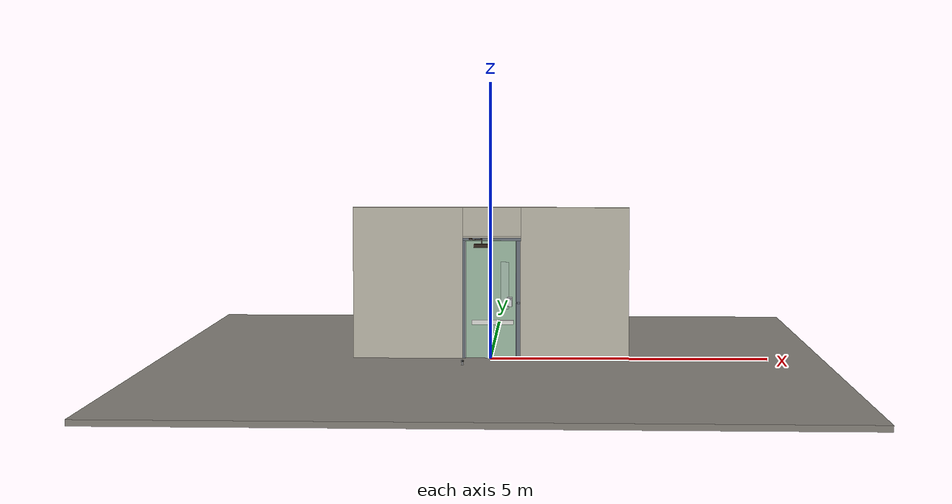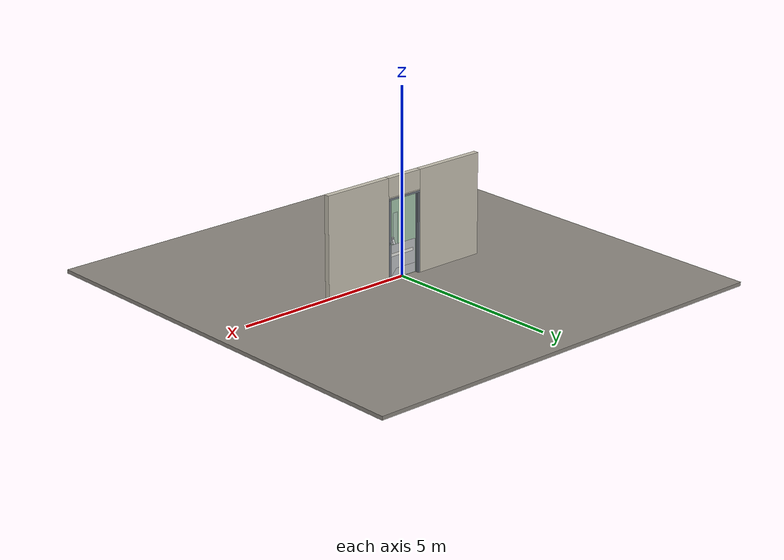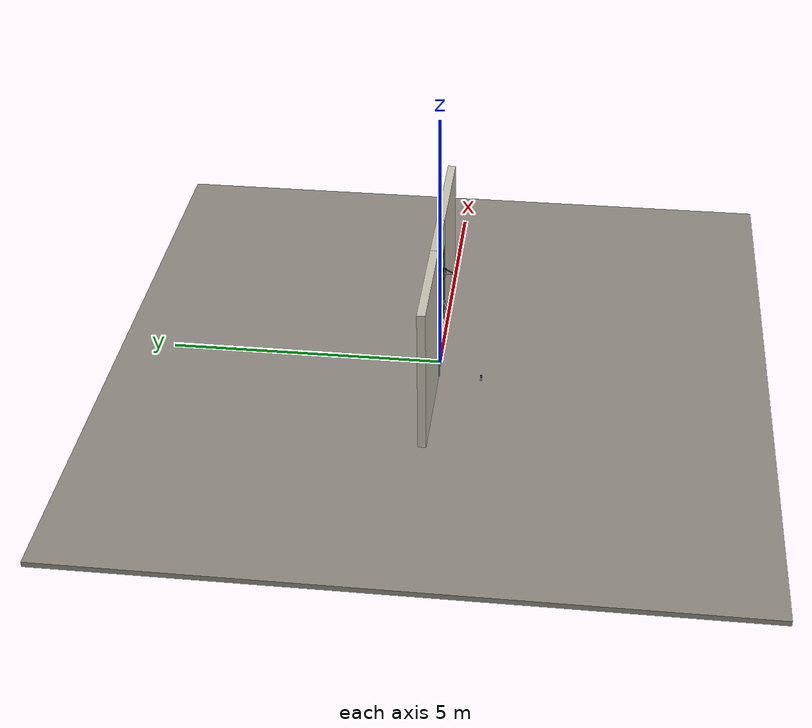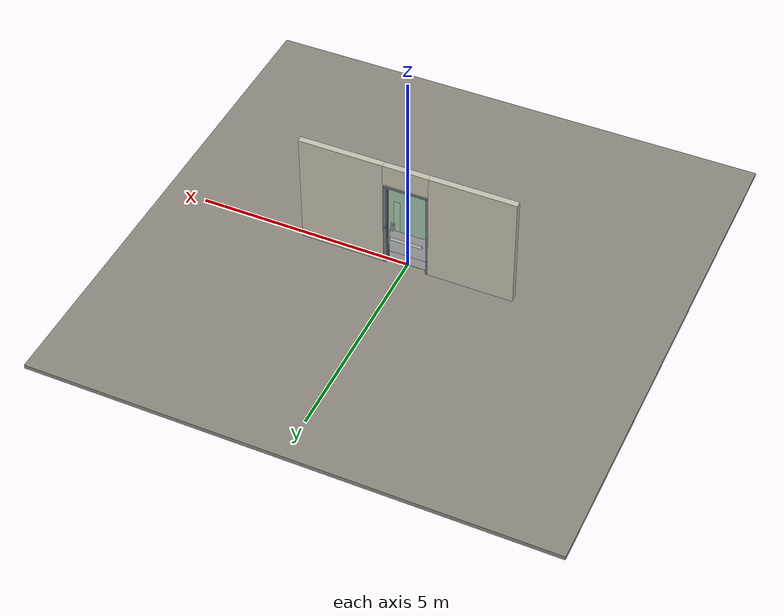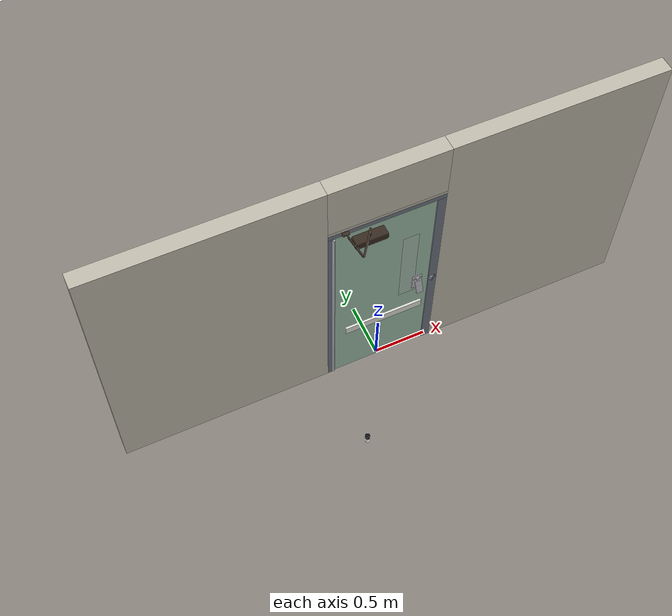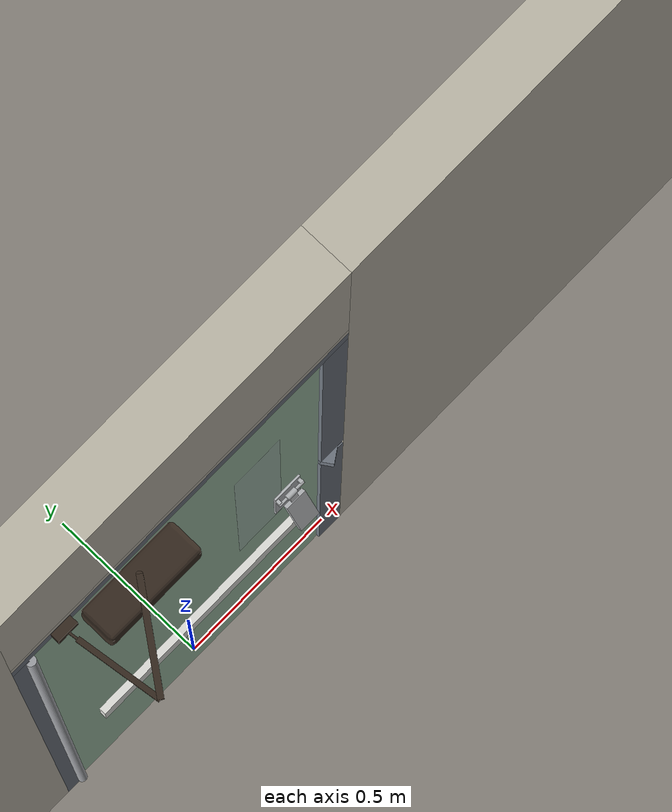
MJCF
<?xml version="1.0" ?>
<mujoco model="db0884_swing_single_full">
  <compiler angle="radian" meshdir="../../hardware" texturedir="../../textures" autolimits="true" inertiafromgeom="false"/>
  <option timestep="0.002" integrator="implicitfast" cone="elliptic" impratio="10" noslip_iterations="3">
    <flag multiccd="enable"/>
  </option>
  <size memory="16M"/>
  <default>
    <geom condim="4" solref="0.005 1" solimp="0.95 0.99 0.001"/>
    <joint solreflimit="0.005 1" solimplimit="0.95 0.99 0.001"/>
    <tendon solreflimit="0.005 1"/>
    <equality solref="0.002 1"/>
  </default>
  <visual>
    <headlight ambient="0.4 0.4 0.4" diffuse="0.7 0.7 0.7" specular="0.2 0.2 0.2"/>
    <quality shadowsize="4096"/>
    <map znear="0.01" zfar="60"/>
  </visual>
  <asset>
    <mesh name="closer_body_fdc4667657" file="closer_body_fdc4667657.obj"/>
    <material name="mat_floor" rgba="0.55 0.53 0.5 1" specular="0.2" shininess="0.15" reflectance="0"/>
    <material name="mat_wall" rgba="0.78 0.76 0.7 1" specular="0.2" shininess="0.1" reflectance="0"/>
    <material name="mat_leaf" rgba="0.65 0.78 0.68 1" specular="0.2" shininess="0.34" reflectance="0"/>
    <material name="mat_glass" rgba="0.8 0.85 0.85 0.35" specular="0.2" shininess="0.9" reflectance="0.1"/>
    <material name="mat_hinge" rgba="0.65 0.66 0.68 1" specular="0.74" shininess="0.5" reflectance="0.36"/>
    <material name="mat_op_stainless" rgba="0.75 0.76 0.77 1" specular="0.8" shininess="0.65" reflectance="0.4"/>
    <material name="mat_bolt" rgba="0.75 0.76 0.77 1" specular="0.8" shininess="0.65" reflectance="0.4"/>
    <material name="mat_frame" rgba="0.45 0.48 0.52 1" specular="0.32" shininess="0.6" reflectance="0.08"/>
    <material name="mat_closer" rgba="0.22 0.17 0.13 1" specular="0.8" shininess="0.6" reflectance="0.4"/>
    <material name="mat_kick" rgba="0.75 0.76 0.77 1" specular="0.8" shininess="0.65" reflectance="0.4"/>
    <material name="mat_bumper" rgba="0.92 0.92 0.9 1" specular="0.2" shininess="0.6" reflectance="0"/>
    <material name="mat_bumper_stop" rgba="0.08 0.08 0.08 1" specular="0.2" shininess="0.1" reflectance="0"/>
    <material name="mat_stop_base" rgba="0.9 0.9 0.92 1" specular="0.8" shininess="0.9" reflectance="0.4"/>
    <texture name="skybox" type="skybox" builtin="gradient" rgb1="0.6 0.7 0.85" rgb2="0.9 0.92 0.95" width="256" height="256"/>
  </asset>
  <worldbody>
    <light name="sun" pos="1.5 -2.5 4" dir="-0.3 0.5 -0.8" directional="true" diffuse="0.8 0.8 0.8" specular="0.3 0.3 0.3" castshadow="true"/>
    <light name="fill" pos="-1.5 2.5 3" dir="0.3 -0.5 -0.7" directional="true" diffuse="0.35 0.35 0.4" castshadow="false"/>
    <camera name="robot_view" pos="0 -2.594313 1.812087" xyaxes="1 0 0 0 0.26963 0.962964" fovy="52"/>
    <camera name="far_view" pos="0 2.681312 1.812087" xyaxes="-1 0 0 0 -0.26963 0.962964" fovy="52"/>
    <camera name="iso" pos="2.004737 -2.172262 2.234138" xyaxes="0.741536 0.670913 0 -0.242917 0.268487 0.932151" fovy="46"/>
    <camera name="detail_handle" pos="0.5245 -0.869521 1.293663" xyaxes="0.97561 0.219512 0 -0.070934 0.315262 0.94635" fovy="38"/>
    <geom name="floor" type="box" size="6 6 0.05" pos="0 0 -0.05" material="mat_floor" group="0" contype="1" conaffinity="1" friction="0.8 0.005 0.0001" density="2400"/>
    <geom name="wall_left" type="box" size="0.99475 0.0725 1.3735" pos="-1.50525 0.0435 1.3735" material="mat_wall" group="0" contype="1" conaffinity="1" friction="0.6 0.005 0.0001" density="800"/>
    <geom name="wall_right" type="box" size="0.97975 0.0725 1.3735" pos="1.52025 0.0435 1.3735" material="mat_wall" group="0" contype="1" conaffinity="1" friction="0.6 0.005 0.0001" density="800"/>
    <geom name="wall_header" type="box" size="0.5255 0.0725 0.26" pos="0.015 0.0435 2.487" material="mat_wall" group="0" contype="1" conaffinity="1" friction="0.6 0.005 0.0001" density="800"/>
    <geom name="jamb_hinge" type="box" size="0.025 0.0725 1.0735" pos="-0.4855 0.0435 1.0735" material="mat_frame" group="0" contype="1" conaffinity="1" friction="0.6 0.005 0.0001" density="300"/>
    <geom name="strike_1016_wall_n" type="box" size="0.04 0.05325 0.018" pos="0.5005 0.06275 1.016" material="mat_frame" group="0" contype="1" conaffinity="1" friction="0.6 0.005 0.0001" density="300"/>
    <geom name="strike_1016_wall_p" type="box" size="0.04 0.008 0.018" pos="0.5005 -0.0175 1.016" material="mat_frame" group="0" contype="1" conaffinity="1" friction="0.6 0.005 0.0001" density="300"/>
    <geom name="strike_1016_ramp" type="box" size="0.04 0.018028 0.018" pos="0.503782 -0.018312 1.016" quat="0.957092 0 0 0.289784" material="mat_frame" group="0" contype="1" conaffinity="1" friction="0.12 0.005 0.0001" density="300"/>
    <geom name="strike_1016_back" type="box" size="0.0285 0.0095 0.018" pos="0.512 0 1.016" material="mat_frame" group="0" contype="1" conaffinity="1" friction="0.6 0.005 0.0001" density="300"/>
    <geom name="jamb_strike_0" type="box" size="0.04 0.0725 0.499" pos="0.5005 0.0435 0.499" material="mat_frame" group="0" contype="1" conaffinity="1" friction="0.6 0.005 0.0001" density="300"/>
    <geom name="jamb_strike_1" type="box" size="0.04 0.0725 0.5565" pos="0.5005 0.0435 1.5905" material="mat_frame" group="0" contype="1" conaffinity="1" friction="0.6 0.005 0.0001" density="300"/>
    <geom name="jamb_head" type="box" size="0.5255 0.0725 0.025" pos="0.015 0.0435 2.172" material="mat_frame" group="0" contype="1" conaffinity="1" friction="0.6 0.005 0.0001" density="300"/>
    <geom name="head_stud" type="box" size="0.5255 0.0725 0.015" pos="0.015 0.0435 2.212" material="mat_wall" group="0" contype="1" conaffinity="1" friction="0.6 0.005 0.0001" density="500"/>
    <geom name="stop_hinge" type="box" size="0.0055 0.016 1.0735" pos="-0.455 0.0385 1.0735" material="mat_frame" group="0" contype="1" conaffinity="1" friction="0.6 0.005 0.0001" density="300"/>
    <geom name="stop_strike" type="box" size="0.0055 0.016 1.0735" pos="0.455 0.0385 1.0735" material="mat_frame" group="0" contype="1" conaffinity="1" friction="0.6 0.005 0.0001" density="300"/>
    <geom name="stop_head" type="box" size="0.4605 0.016 0.0055" pos="0 0.0385 2.1415" material="mat_frame" group="0" contype="1" conaffinity="1" friction="0.6 0.005 0.0001" density="300"/>
    <geom name="closer_bracket" type="box" size="0.03 0.012 0.014" pos="-0.3605 -0.041 2.177" material="mat_closer" group="1" contype="0" conaffinity="0" density="2700"/>
    <geom name="door_stop_base" type="cylinder" size="0.022 0.003" pos="-0.4735 -0.8059 0.003" material="mat_stop_base" group="0" contype="1" conaffinity="1" friction="0.6 0.005 0.0001" density="7850"/>
    <geom name="door_stop_post" type="cylinder" size="0.012 0.0245" pos="-0.4735 -0.8059 0.0305" material="mat_stop_base" group="0" contype="1" conaffinity="1" friction="0.6 0.005 0.0001" density="7850"/>
    <geom name="door_stop_bumper" type="cylinder" size="0.022 0.02" pos="-0.4735 -0.8059 0.075" material="mat_bumper_stop" group="0" contype="1" conaffinity="1" friction="0.6 0.005 0.0001" density="1100"/>
    <site name="approach_point" pos="0 -1.5 0" quat="1 0 0 0" size="0.05" rgba="0.2 0.9 0.2 0.5" group="4"/>
    <site name="goal_point" pos="0 1.5 0" quat="1 0 0 0" size="0.05" rgba="0.2 0.9 0.2 0.5" group="4"/>
    <site name="door_plane_center" pos="0 0 1.0735" quat="1 0 0 0" size="0.02" rgba="0.2 0.9 0.2 0.5" group="4"/>
    <body name="leaf" pos="-0.4605 0 0">
      <inertial pos="0.422522 -0.009265 1.12678" mass="77.230341" quat="-0.497137 0.474314 0.512215 0.515284" diaginertia="5.045751702 37.095435647 42.027515132"/>
      <joint name="leaf_hinge" type="hinge" axis="0 0 -1" pos="0.003 -0.029 0" limited="true" range="0 1.570796" damping="12.268966" frictionloss="3.285069" stiffness="12.694198" springref="-2.580707" armature="0.02"/>
      <geom name="leaf_slab" type="box" size="0.457 0.022 1.067" pos="0.46 0 1.076" material="mat_leaf" group="0" contype="1" conaffinity="1" friction="0.35 0.005 0.0001" density="1"/>
      <geom name="leaf_glass_0" type="box" size="0.075 0.0228 0.4268" pos="0.71146 0 1.33208" material="mat_glass" group="1" contype="0" conaffinity="0" density="1"/>
      <geom name="hinge_continuous" type="cylinder" size="0.0136 1.057" pos="0.003 -0.029 1.076" material="mat_hinge" group="1" contype="0" conaffinity="0" density="2700"/>
      <geom name="leaf_handle_paddle_backplate_n" type="box" size="0.044 0.003 0.09" pos="0.805 -0.025 1.035895" material="mat_op_stainless" group="0" contype="1" conaffinity="1" friction="0.6 0.005 0.0001" density="3000"/>
      <geom name="leaf_handle_paddle_bearing_n_-1" type="box" size="0.005 0.006 0.009" pos="0.767 -0.034 1.098895" material="mat_op_stainless" group="0" contype="1" conaffinity="1" friction="0.6 0.005 0.0001" density="3000"/>
      <geom name="leaf_handle_paddle_bearing_n_1" type="box" size="0.005 0.006 0.009" pos="0.843 -0.034 1.098895" material="mat_op_stainless" group="0" contype="1" conaffinity="1" friction="0.6 0.005 0.0001" density="3000"/>
      <geom name="leaf_handle_paddle_pin_n" type="cylinder" size="0.004 0.043" pos="0.805 -0.04 1.098895" quat="0.707107 0 0.707107 0" material="mat_op_stainless" group="1" contype="0" conaffinity="0" density="7850"/>
      <geom name="leaf_handle_paddle_backplate_p" type="box" size="0.044 0.003 0.09" pos="0.805 0.025 1.035895" material="mat_op_stainless" group="0" contype="1" conaffinity="1" friction="0.6 0.005 0.0001" density="3000"/>
      <geom name="leaf_handle_paddle_bearing_p_-1" type="box" size="0.005 0.006 0.009" pos="0.767 0.034 1.098895" material="mat_op_stainless" group="0" contype="1" conaffinity="1" friction="0.6 0.005 0.0001" density="3000"/>
      <geom name="leaf_handle_paddle_bearing_p_1" type="box" size="0.005 0.006 0.009" pos="0.843 0.034 1.098895" material="mat_op_stainless" group="0" contype="1" conaffinity="1" friction="0.6 0.005 0.0001" density="3000"/>
      <geom name="leaf_handle_paddle_pin_p" type="cylinder" size="0.004 0.043" pos="0.805 0.04 1.098895" quat="0.707107 0 0.707107 0" material="mat_op_stainless" group="1" contype="0" conaffinity="0" density="7850"/>
      <geom name="leaf_latch_bolt_faceplate" type="box" size="0.0006 0.014 0.028" pos="0.9164 0 1.016" material="mat_bolt" group="1" contype="0" conaffinity="0" density="8500"/>
      <geom name="closer_body" type="mesh" mesh="closer_body_fdc4667657" pos="0.3 -0.022 2.054" quat="0.707107 0.707107 0 0" material="mat_closer" group="1" contype="0" conaffinity="0" density="2000"/>
      <geom name="closer_body_col" type="box" size="0.145 0.05 0.035" pos="0.3 -0.072 2.054" material="mat_closer" group="3" contype="1" conaffinity="1" rgba="0.8 0.3 0.3 0.25" friction="0.6 0.005 0.0001" density="2000"/>
      <geom name="closer_pinion_shaft" type="cylinder" size="0.008 0.0615" pos="0.3 -0.072 2.1155" material="mat_closer" group="1" contype="0" conaffinity="0" density="2700"/>
      <geom name="kick_plate_p" type="box" size="0.427 0.0008 0.125" pos="0.46 0.0228 0.144" material="mat_kick" group="2" contype="0" conaffinity="0" density="7900"/>
      <geom name="armor_plate" type="box" size="0.427 0.0008 0.45" pos="0.46 0.0228 0.469" material="mat_kick" group="2" contype="0" conaffinity="0" density="7900"/>
      <geom name="bumper_rail_n" type="box" size="0.372 0.01 0.04" pos="0.495 -0.032 0.659" material="mat_bumper" group="0" contype="1" conaffinity="1" friction="0.6 0.005 0.0001" density="1200"/>
      <geom name="bumper_rail_p" type="box" size="0.372 0.01 0.04" pos="0.495 0.032 0.659" material="mat_bumper" group="0" contype="1" conaffinity="1" friction="0.6 0.005 0.0001" density="1200"/>
      <site name="leaf_edge_mid" pos="0.917 0 1.067" quat="1 0 0 0" size="0.02" rgba="0.2 0.9 0.2 0.5" group="4"/>
      <body name="leaf_handle" pos="0.805 -0.04 1.098895">
        <inertial pos="0 -0.031074 -0.073496" mass="0.333798" quat="-0.390699 0.589368 0.589368 0.390699" diaginertia="0.00010582 0.00062862 0.000726597"/>
        <joint name="leaf_handle_hinge" type="hinge" axis="-1 0 0" limited="true" range="0 0.4" damping="0.27663" frictionloss="0.056" stiffness="1.5" springref="-1" armature="0.01"/>
        <geom name="leaf_handle_paddle_col_n" type="box" size="0.032 0.006 0.063" pos="0 -0.035048 -0.082895" quat="0.980067 -0.198669 0 0" material="mat_op_stainless" group="0" contype="1" conaffinity="1" friction="0.6 0.005 0.0001" density="3000"/>
        <geom name="leaf_handle_paddle_neck_n" type="box" size="0.012 0.004 0.021" pos="0 -0.008178 -0.019342" quat="0.980067 -0.198669 0 0" material="mat_op_stainless" group="0" contype="1" conaffinity="1" friction="0.6 0.005 0.0001" density="3000"/>
        <geom name="leaf_handle_paddle_hub_n" type="cylinder" size="0.008 0.016" pos="0 0 0" quat="0.707107 0 0.707107 0" material="mat_op_stainless" group="1" contype="0" conaffinity="0" density="3000"/>
        <site name="leaf_handle_grip_n" pos="0 -0.029521 -0.085232" quat="0.552531 -0.833492 0 0" size="0.012" rgba="0.2 0.9 0.2 0.5" group="4"/>
      </body>
      <body name="leaf_handle_paddle_follower_p" pos="0.805 0.04 1.098895">
        <inertial pos="0 0.031074 -0.073496" mass="0.333798" quat="0.589368 -0.390699 -0.390699 -0.589368" diaginertia="0.00010582 0.00062862 0.000726597"/>
        <joint name="leaf_handle_paddle_follower_p_hinge" type="hinge" axis="-1 0 0" limited="true" range="0 0.4" armature="0.002"/>
        <geom name="leaf_handle_paddle_col_p" type="box" size="0.032 0.006 0.063" pos="0 0.035048 -0.082895" quat="0.980067 0.198669 0 0" material="mat_op_stainless" group="0" contype="1" conaffinity="1" friction="0.6 0.005 0.0001" density="3000"/>
        <geom name="leaf_handle_paddle_neck_p" type="box" size="0.012 0.004 0.021" pos="0 0.008178 -0.019342" quat="0.980067 0.198669 0 0" material="mat_op_stainless" group="0" contype="1" conaffinity="1" friction="0.6 0.005 0.0001" density="3000"/>
        <geom name="leaf_handle_paddle_hub_p" type="cylinder" size="0.008 0.016" pos="0 0 0" quat="0.707107 0 0.707107 0" material="mat_op_stainless" group="1" contype="0" conaffinity="0" density="3000"/>
        <site name="leaf_handle_grip_p" pos="0 0.040574 -0.080559" quat="0.833492 -0.552531 0 0" size="0.012" rgba="0.2 0.9 0.2 0.5" group="4"/>
      </body>
      <body name="leaf_latch_bolt" pos="0.917 0 1.016">
        <inertial pos="-0.0055 0 0" mass="0.074627" quat="0.92388 -0.382683 0 0" diaginertia="0.000002271 0.000013255 0.000013255"/>
        <joint name="leaf_latch_bolt_slide" type="slide" axis="-1 0 0" limited="true" range="0 0.019" damping="2" frictionloss="0.3" stiffness="550" springref="-0.01" armature="0.1"/>
        <geom name="leaf_latch_bolt_capsule" type="capsule" size="0.008 0.0165" pos="-0.0055 0 0" quat="0.707107 0 0.707107 0" material="mat_bolt" group="0" contype="1" conaffinity="1" friction="0.2 0.005 0.0001" density="8500"/>
      </body>
      <body name="closer_arm_main" pos="0.3 -0.072 2.177" quat="0.454107 0 0 -0.890947">
        <inertial pos="0.14 0 0" mass="0.12096" quat="1 0 0 0" diaginertia="0.000003588 0.00079128 0.000792852"/>
        <joint name="closer_pinion" type="hinge" axis="0 0 1" limited="false" damping="0.01" armature="0.002"/>
        <geom name="closer_arm_main_geom" type="box" size="0.14 0.008 0.005" pos="0.14 0 0" material="mat_closer" group="1" contype="0" conaffinity="0" density="2700"/>
        <body name="closer_arm_fore" pos="0.28 0 0" quat="-0.373215 0 0 0.927745">
          <inertial pos="0.128088 0 0" mass="0.076531" quat="1 0 0 0" diaginertia="0.000001771 0.000437665 0.000438201"/>
          <joint name="closer_elbow" type="hinge" axis="0 0 1" limited="false" damping="0.01" armature="0.002"/>
          <geom name="closer_arm_fore_geom" type="box" size="0.1125 0.007 0.004" pos="0.1125 0 0" material="mat_closer" group="1" contype="0" conaffinity="0" density="2700"/>
          <geom name="closer_fore_neck" type="box" size="0.0175 0.003 0.003" pos="0.2425 0 0" material="mat_closer" group="1" contype="0" conaffinity="0" density="2700"/>
          <geom name="closer_fore_pivot" type="cylinder" size="0.005 0.012" pos="0.26 0 0" material="mat_closer" group="1" contype="0" conaffinity="0" density="2700"/>
        </body>
      </body>
    </body>
  </worldbody>
  <tendon>
    <fixed name="leaf_latch_bolt_coupling" limited="true" range="0 10">
      <joint joint="leaf_latch_bolt_slide" coef="1"/>
      <joint joint="leaf_handle_hinge" coef="-0.051351"/>
    </fixed>
  </tendon>
  <equality>
    <joint name="leaf_handle_paddle_cam_p" joint1="leaf_handle_paddle_follower_p_hinge" joint2="leaf_handle_hinge" polycoef="0 1 0 0 0" active="true"/>
    <connect name="closer_arm_connect" body1="closer_arm_fore" body2="world" anchor="0.26 0 0" active="true"/>
  </equality>
  <contact>
    <exclude body1="closer_arm_main" body2="leaf"/>
    <exclude body1="closer_arm_fore" body2="leaf"/>
    <exclude body1="closer_arm_main" body2="closer_arm_fore"/>
  </contact>
  <sensor>
    <jointpos name="leaf_hinge_pos" joint="leaf_hinge"/>
    <jointvel name="leaf_hinge_vel" joint="leaf_hinge"/>
    <jointpos name="leaf_handle_hinge_pos" joint="leaf_handle_hinge"/>
    <jointvel name="leaf_handle_hinge_vel" joint="leaf_handle_hinge"/>
    <jointpos name="leaf_latch_bolt_slide_pos" joint="leaf_latch_bolt_slide"/>
    <jointvel name="leaf_latch_bolt_slide_vel" joint="leaf_latch_bolt_slide"/>
  </sensor>
</mujoco>
